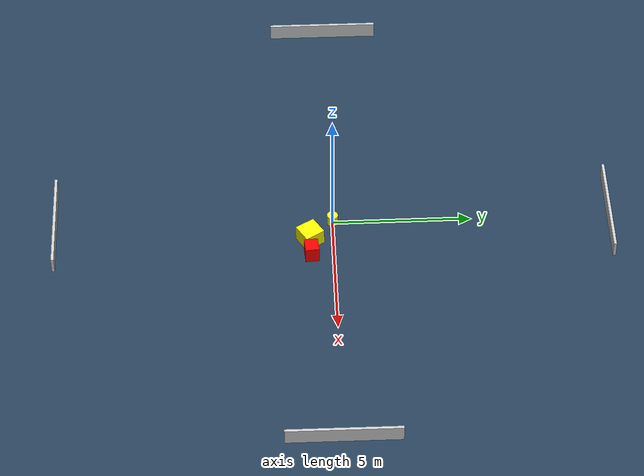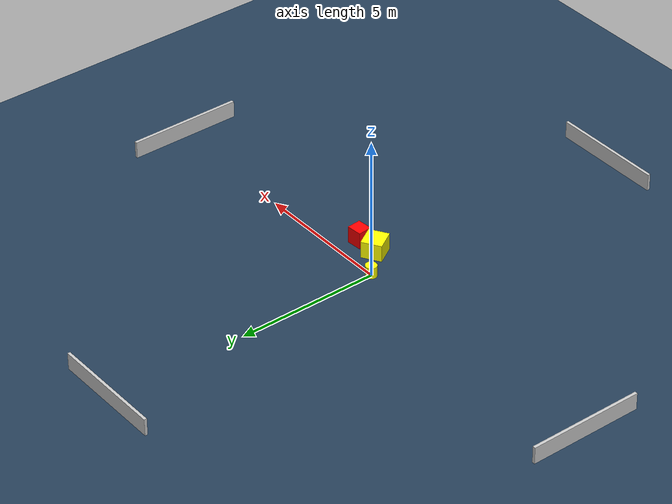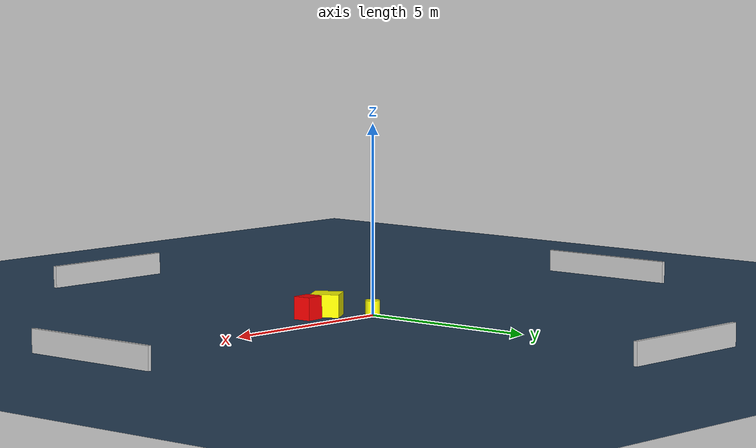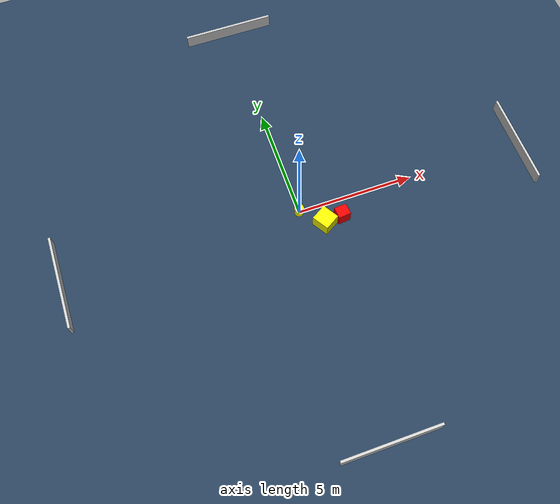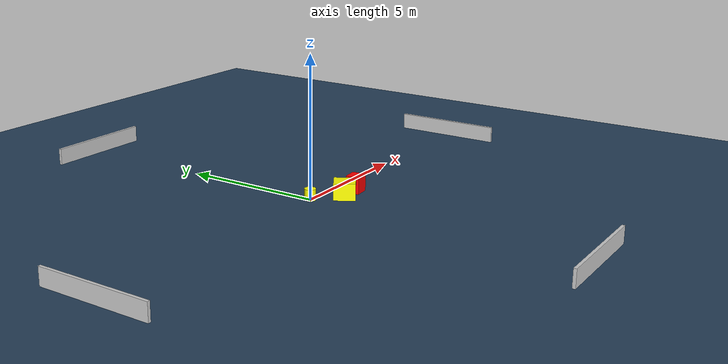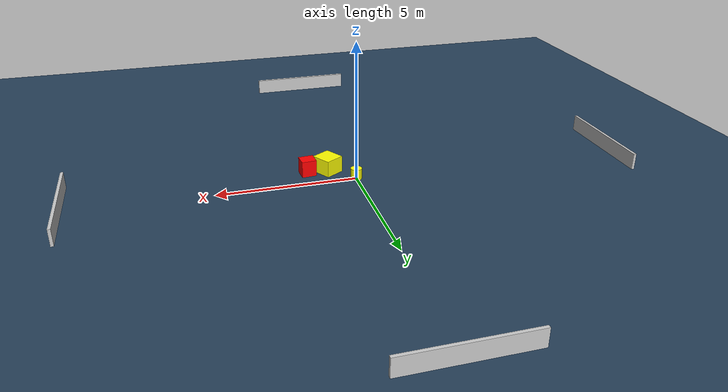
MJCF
<?xml version="1.0" ?>
<mujoco model="generated_environment">
  <option timestep="0.01" integrator="RK4" cone="elliptic"/>
  <default>
    <geom density="1"/>
  </default>
  <asset>
    <texture builtin="gradient" height="3072" name="skybox" rgb1="0.3 0.5 0.7" rgb2="0 0 0" type="skybox" width="512"/>
    <texture builtin="checker" height="300" name="groundplane" rgb1="0.2 0.3 0.4" rgb2="0.1 0.2 0.3" type="2d" width="300"/>
    <material name="groundplane" reflectance="0.2" texrepeat="5 5" texture="groundplane"/>
  </asset>
  <worldbody>
    <light dir="0 0 -1" directional="true" pos="0 0 1.5"/>
    <geom condim="3" friction="0.5 0.005 0.001" material="groundplane" name="floor" pos="0 0 0" size="0 0 0.05" type="plane"/>
    <body name="walls">
      <geom name="wall_1" condim="4" pos="-10.0 0.0 0.3" rgba="0.800000011920929 0.800000011920929 0.800000011920929 1.0" size="0.05 2.0 0.3" type="box"/>
      <geom name="wall_2" condim="4" pos="10.0 0.0 0.3" rgba="0.800000011920929 0.800000011920929 0.800000011920929 1.0" size="0.05 2.0 0.3" type="box"/>
      <geom name="wall_3" condim="4" pos="0.0 -10.0 0.3" rgba="0.800000011920929 0.800000011920929 0.800000011920929 1.0" size="2.0 0.05 0.3" type="box"/>
      <geom name="wall_4" condim="4" pos="0.0 10.0 0.3" rgba="0.800000011920929 0.800000011920929 0.800000011920929 1.0" size="2.0 0.05 0.3" type="box"/>
    </body>
    <body name="robot">
      <joint name="joint_x" type="slide" pos="0 0 0" axis="1 0 0"/>
      <joint name="joint_y" type="slide" pos="0 0 0" axis="0 1 0"/>
      <geom name="robot" type="cylinder" pos="0.0 0.0 0.2" size="0.2 0.2 0.0" mass="5.0" friction="1.0 0.005 0.0001" condim="4" rgba="1.0 1.0 0.0 1.0"/>
    </body>
    <body name="obstacle_1_movable">
      <geom name="obstacle_1_movable" condim="4" pos="0.8472493858468316 -0.8360720615086948 0.3" euler="0 0 301.5555892058632" friction="0.0 0.005 0.001" rgba="1.0 1.0 0.0 1.0" size="0.3766750954688718 0.35790783152964445 0.3" type="box" mass="0.1"/>
      <joint type="free"/>
    </body>
    <body name="obstacle_2_static">
      <geom name="obstacle_2_static" condim="4" pos="1.6042223853938635 -0.8018530701751555 0.3" euler="0 0 274.8467679720575" friction="0.0 0.005 0.001" rgba="1.0 0.0 0.0 1.0" size="0.24433876815957514 0.26556170157767023 0.3" type="box"/>
    </body>
  </worldbody>
  <actuator>
    <motor name="actuator_x" joint="joint_x" gear="1" ctrlrange="-1 1"/>
    <motor name="actuator_y" joint="joint_y" gear="1" ctrlrange="-1 1"/>
  </actuator>
</mujoco>
